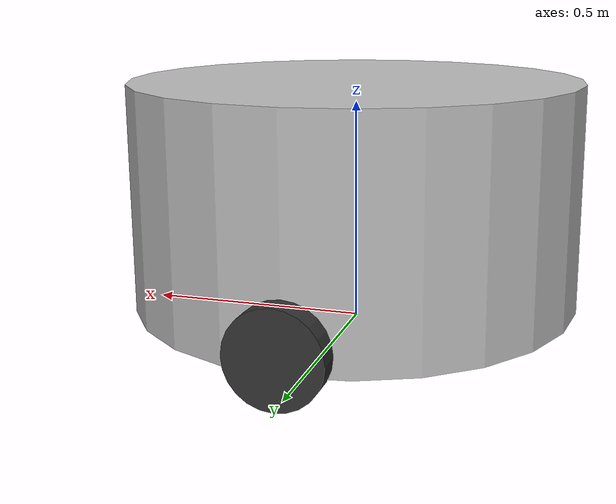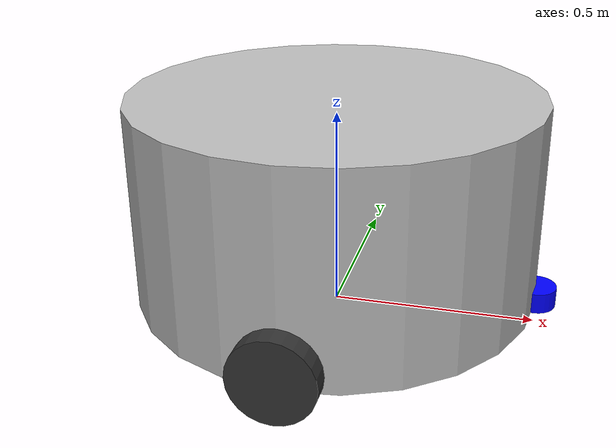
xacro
<robot name="test_robot" xmlns:xacro="http://ros.org/wiki/xacro">
    <xacro:property name="baselen" value="0.5" />
    <xacro:property name="baserad" value="0.5" />
    <xacro:property name="wheellen" value="0.05" />
    <xacro:property name="wheelrad" value="0.1" />

    <!--色の定義-->
    <material name="grey">
        <color rgba="0.75 0.75 0.75 1"/>
    </material>
    <material name="blue">
        <color rgba="0.0 0.0 1 1"/>
    </material>
    <material name="black">
        <color rgba="0.2 0.2 0.2 1"/>
    </material>

    <!--baseの慣性-->
    <xacro:macro name="base_inertia">
        <inertial>
            <origin xyz="0 0 ${(baselen/2)+0.05}"/>
            <mass value="2"/>
            <inertia ixx="${1/4*2*baserad*baserad+1/12*2*baselen}" ixy="0.0" ixz="0.0" iyy="${1/4*2*baserad*baserad+1/12*2*baselen}" iyz="0.0" izz="${1/2*2*baserad*baserad}"/>
        </inertial>
    </xacro:macro>

    <!--bodyの作成-->
    <link name="base_footprint">
        <origin xyz="0 0 0"/>
    </link>

    <link name="base_link">
        <visual>
            <geometry>
                <cylinder length="${baselen}" radius="${baserad}"/>
            </geometry>
            <origin xyz ="0 0 ${(baselen/2)+0.05}"/>
            <material name="grey"/>
        </visual>
        <collision>
            <geometry>
                <cylinder length="${baselen}" radius="${baserad}"/>
            </geometry>
            <origin xyz ="0 0 ${(baselen/2)+0.05}"/>
        </collision>
        <xacro:base_inertia/>
    </link>
    <gazebo reference="base_link">
        <material>
            Gazebo/Orange
        </material>
    </gazebo>

    <!--lidarの作成-->
    <link name='LiDAR'>
        <visual>
            <geometry>
                <cylinder length="0.05" radius="0.05"/>
            </geometry>
            <origin xyz="0 0 0"/>
            <material name="blue"/>
        </visual>
    </link>

    <!--右の車輪-->
    <link name="right_wheel">
        <visual>
        <geometry>
            <cylinder length="${wheellen}" radius="${wheelrad}"/>
        </geometry>
        <origin rpy="1.57075 0 0" xyz="0 0 0"/>
        <material name="black"/>
        </visual>
        <collision>
            <geometry>
                <cylinder length="${wheellen}" radius="${wheelrad}"/>
            </geometry>
            <origin rpy="1.57075 0 0" xyz="0 0 0"/>
        </collision>
        <inertial>
            <origin rpy="1.57075 0 0" xyz="0 0 0"/>
            <mass value="1"/>
            <inertia ixx="${1/4*1*wheelrad*wheelrad+1/12*2*wheellen}" ixy="0.0" ixz="0.0" iyy="${1/4*1*wheelrad*wheelrad+1/12*2*wheellen}" iyz="0.0" izz="${1/2*1*wheelrad*wheelrad}"/>
        </inertial>
    </link>
    <gazebo reference="right_wheel">
        <material>
            Gazebo/Black
        </material>
    </gazebo>

    <!--左の車輪-->
    <link name="left_wheel">
        <visual>
        <geometry>
            <cylinder length="${wheellen}" radius="${wheelrad}"/>
        </geometry>
        <origin rpy="1.57075 0 0" xyz="0 0 0"/>
        <material name="black"/>
        </visual>
        <collision>
            <geometry>
                <cylinder length="${wheellen}" radius="${wheelrad}"/>
            </geometry>
            <origin rpy="1.57075 0 0" xyz="0 0 0"/>
        </collision>
        <inertial>
            <origin rpy="1.57075 0 0" xyz="0 0 0"/>
            <mass value="1"/>
            <inertia ixx="${1/4*1*wheelrad*wheelrad+1/12*2*wheellen}" ixy="0.0" ixz="0.0" iyy="${1/4*1*wheelrad*wheelrad+1/12*2*wheellen}" iyz="0.0" izz="${1/2*2*wheelrad*wheelrad}"/>
        </inertial>
    </link>
    <gazebo reference="left_wheel">
        <material>
            Gazebo/Black
        </material>
    </gazebo>

    <!--受動輪-->
    <link name="caster_wheel">
        <visual>
        <geometry>
            <sphere radius="0.05"/>
        </geometry>
        <origin  xyz="0 0 0"/>
        <material name="black"/>
        </visual>
        <collision>
            <geometry>
                <sphere radius="0.05"/>
            </geometry>
            <origin xyz="0 0 0"/>
        </collision>
        <inertial>
            <origin  xyz="0 0 0"/>
            <mass value="1"/>
            <inertia ixx="${2/5*1*0.05*0.05}" ixy="0" ixz="0" iyy="${2/5*1*0.05*0.05}" iyz="0" izz="${2/5*1*0.05*0.05}"/>
        </inertial>
    </link>

    <gazebo reference="caster_wheel">
        <material>
            Gazebo/Red
        </material>
    </gazebo>

    <!--###########ジョイントの作成##########-->
    <!--base_footprintとbase_link-->
    <joint name="base_link_to_base_footprint" type="fixed">
        <parent link="base_link" />
        <child link="base_footprint" />
    </joint>
    <!--LiDARとbase_link-->
    <joint name="base_link_to_LiDAR" type="fixed">
        <parent link="base_link"/>
        <child link="LiDAR"/>
        <origin xyz = "${baserad} 0 ${0.05+0.05/2}"/>
    <axis xyz = "0 0 1"/>
    </joint>

    <!--base_linkとright_wheel-->
    <joint name="base_link_to_right_wheel" type="continuous">
        <parent link="base_link"/>
        <child link="right_wheel"/>
        <origin xyz = "0 ${-(baserad+wheellen/2)} ${wheelrad}"/>
        <axis xyz = "0 1 0"/>
    </joint>

    <!--base_linkとleft_wheel-->
    <joint name="base_link_to_left_wheel" type="continuous">
        <parent link="base_link"/>
        <child link="left_wheel"/>
        <origin xyz = "0 ${baserad+wheellen/2} ${wheelrad}"/>
        <axis xyz = "0 1 0"/>
    </joint>

    <!--base_linkとcaster_wheel-->
    <joint name="base_link_to_caster_wheel" type="fixed">
        <parent link="base_link"/>
        <child link="caster_wheel"/>
        <origin xyz = "-0.25 0 0.05"/>
        <axis xyz = "0 1 0"/>
    </joint>

    <gazebo>
    <plugin name='diff_drive' filename='libgazebo_ros_diff_drive.so'>

        <!-- wheels -->
        <left_joint>base_link_to_left_wheel</left_joint>
        <right_joint>base_link_to_right_wheel</right_joint>

        <!-- kinematics -->
        <wheel_separation>1.05</wheel_separation>
        <wheel_diameter>0.1</wheel_diameter>

        <!-- limits -->
        <max_wheel_torque>20</max_wheel_torque>
        <max_wheel_acceleration>1.0</max_wheel_acceleration>

        <!-- output -->
        <publish_odom>True</publish_odom>
        <publish_odom_tf>True</publish_odom_tf>
        <publish_wheel_tf>false</publish_wheel_tf>
        <publish_tf>true</publish_tf>

        <odometry_frame>odom</odometry_frame>
        <robot_base_frame>base_link</robot_base_frame>
    </plugin>
    </gazebo>

    <gazebo reference="LiDAR">
        <sensor name="lidar" type="ray">
            <always_on>true</always_on>
            <visualize>true</visualize>
            <update_rate>5</update_rate>
            <pose>0 0 0 0 0 0</pose>
            <ray>
                <scan>
                    <horizontal>
                        <samples>360</samples>
                        <resolution>1.0</resolution>
                        <min_angle>4.71</min_angle>
                        <max_angle>7.85</max_angle>
                    </horizontal>
                </scan>
                <range>
                    <min>0.12</min>
                    <max>12.0</max>
                    <resolution>0.02</resolution>
                </range>
                <noise>
                    <type>gaussian</type>
                    <mean>0.0</mean>
                    <stddev>0.01</stddev>
                </noise>
            </ray>
            <plugin name="scan" filename="libgazebo_ros_ray_sensor.so">
                <ros>
                    <remapping>~/out:=scan</remapping>
                </ros>
                <output_type>sensor_msgs/LaserScan</output_type>
                <frame_name>LiDAR</frame_name>
            </plugin>

        </sensor>

    </gazebo>

</robot>
